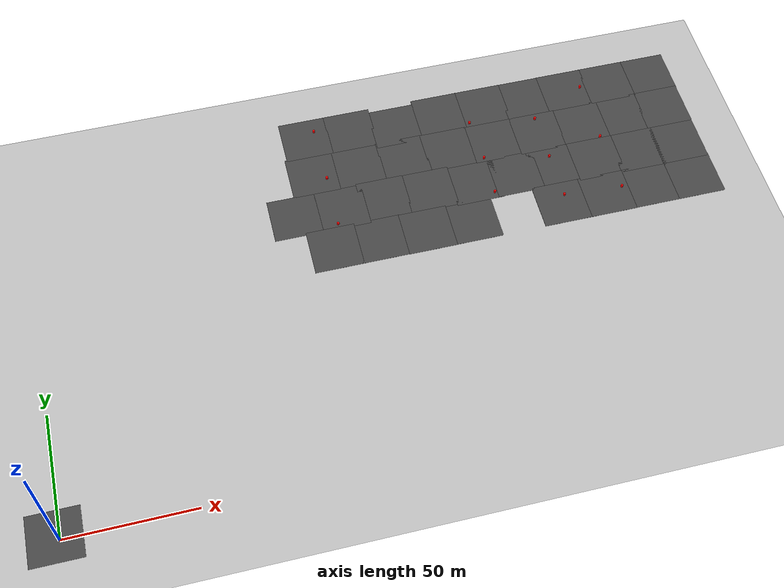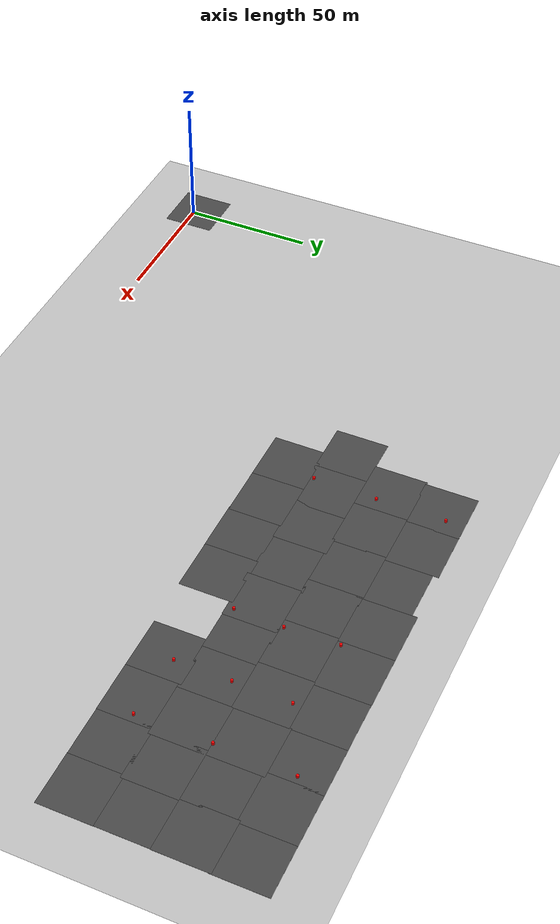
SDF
<sdf version="1.6">
 <world name="default">
  <model name="ground_plane">
   <static>1</static>
   <link name="link">
    <collision name="collision">
     <geometry><plane><normal>0 0 1</normal><size>100 100</size></plane></geometry>
     <surface>
      <contact><collide_bitmask>65535</collide_bitmask></contact>
      <friction><ode><mu>100</mu><mu2>50</mu2></ode></friction>
     </surface>
    </collision>
    <visual name="visual">
     <cast_shadows>0</cast_shadows>
     <geometry><plane><normal>0 0 1</normal><size>100 100</size></plane></geometry>
     <material>
      <script><uri>file://media/materials/scripts/gazebo.material</uri><name>Gazebo/Grey</name></script>
     </material>
    </visual>
   </link>
  </model>
  <model name="asphalt_plane">
   <static>1</static>
   <link name="link">
    <collision name="collision"><geometry><box><size>20 20 0.1</size></box></geometry></collision>
    <visual name="visual">
     <cast_shadows>0</cast_shadows>
     <geometry><box><size>20 20 0.1</size></box></geometry>
     <material>
      <script>
       <uri>model://asphalt_plane/materials/scripts</uri>
       <uri>model://asphalt_plane/materials/textures</uri>
       <name>vrc/asphalt</name>
      </script>
     </material>
    </visual>
   </link>
   <pose>-1.68563 1.69754 0 0 -0 0</pose>
  </model>
  <model name="asphalt_plane_125">
   <static>1</static>
   <link name="link">
    <collision name="collision"><geometry><box><size>20 20 0.1</size></box></geometry></collision>
    <visual name="visual">
     <cast_shadows>0</cast_shadows>
     <geometry><box><size>20 20 0.1</size></box></geometry>
     <material>
      <script>
       <uri>model://asphalt_plane/materials/scripts</uri>
       <uri>model://asphalt_plane/materials/textures</uri>
       <name>vrc/asphalt</name>
      </script>
     </material>
    </visual>
   </link>
   <pose>273.432 98.3365 0 0 -0 0</pose>
  </model>
  <model name="asphalt_plane_126">
   <static>1</static>
   <link name="link">
    <collision name="collision"><geometry><box><size>20 20 0.1</size></box></geometry></collision>
    <visual name="visual">
     <cast_shadows>0</cast_shadows>
     <geometry><box><size>20 20 0.1</size></box></geometry>
     <material>
      <script>
       <uri>model://asphalt_plane/materials/scripts</uri>
       <uri>model://asphalt_plane/materials/textures</uri>
       <name>vrc/asphalt</name>
      </script>
     </material>
    </visual>
   </link>
   <pose>253.855 98.361 0 0 -0 0</pose>
  </model>
  <model name="asphalt_plane_127">
   <static>1</static>
   <link name="link">
    <collision name="collision"><geometry><box><size>20 20 0.1</size></box></geometry></collision>
    <visual name="visual">
     <cast_shadows>0</cast_shadows>
     <geometry><box><size>20 20 0.1</size></box></geometry>
     <material>
      <script>
       <uri>model://asphalt_plane/materials/scripts</uri>
       <uri>model://asphalt_plane/materials/textures</uri>
       <name>vrc/asphalt</name>
      </script>
     </material>
    </visual>
   </link>
   <pose>234.896 98.2494 0 0 -0 0</pose>
  </model>
  <model name="asphalt_plane_128">
   <static>1</static>
   <link name="link">
    <collision name="collision"><geometry><box><size>20 20 0.1</size></box></geometry></collision>
    <visual name="visual">
     <cast_shadows>0</cast_shadows>
     <geometry><box><size>20 20 0.1</size></box></geometry>
     <material>
      <script>
       <uri>model://asphalt_plane/materials/scripts</uri>
       <uri>model://asphalt_plane/materials/textures</uri>
       <name>vrc/asphalt</name>
      </script>
     </material>
    </visual>
   </link>
   <pose>215.418 98.2608 0 0 -0 0</pose>
  </model>
  <model name="asphalt_plane_130">
   <static>1</static>
   <link name="link">
    <collision name="collision"><geometry><box><size>20 20 0.1</size></box></geometry></collision>
    <visual name="visual">
     <cast_shadows>0</cast_shadows>
     <geometry><box><size>20 20 0.1</size></box></geometry>
     <material>
      <script>
       <uri>model://asphalt_plane/materials/scripts</uri>
       <uri>model://asphalt_plane/materials/textures</uri>
       <name>vrc/asphalt</name>
      </script>
     </material>
    </visual>
   </link>
   <pose>177.534 98.1666 0 0 -0 0</pose>
  </model>
  <model name="asphalt_plane_131">
   <static>1</static>
   <link name="link">
    <collision name="collision"><geometry><box><size>20 20 0.1</size></box></geometry></collision>
    <visual name="visual">
     <cast_shadows>0</cast_shadows>
     <geometry><box><size>20 20 0.1</size></box></geometry>
     <material>
      <script>
       <uri>model://asphalt_plane/materials/scripts</uri>
       <uri>model://asphalt_plane/materials/textures</uri>
       <name>vrc/asphalt</name>
      </script>
     </material>
    </visual>
   </link>
   <pose>158.269 98.1058 0 0 -0 0</pose>
  </model>
  <model name="asphalt_plane_132">
   <static>1</static>
   <link name="link">
    <collision name="collision"><geometry><box><size>20 20 0.1</size></box></geometry></collision>
    <visual name="visual">
     <cast_shadows>0</cast_shadows>
     <geometry><box><size>20 20 0.1</size></box></geometry>
     <material>
      <script>
       <uri>model://asphalt_plane/materials/scripts</uri>
       <uri>model://asphalt_plane/materials/textures</uri>
       <name>vrc/asphalt</name>
      </script>
     </material>
    </visual>
   </link>
   <pose>139.187 98.2378 0 0 -0 0</pose>
  </model>
  <model name="asphalt_plane_133">
   <static>1</static>
   <link name="link">
    <collision name="collision"><geometry><box><size>20 20 0.1</size></box></geometry></collision>
    <visual name="visual">
     <cast_shadows>0</cast_shadows>
     <geometry><box><size>20 20 0.1</size></box></geometry>
     <material>
      <script>
       <uri>model://asphalt_plane/materials/scripts</uri>
       <uri>model://asphalt_plane/materials/textures</uri>
       <name>vrc/asphalt</name>
      </script>
     </material>
    </visual>
   </link>
   <pose>119.649 98.22 0 0 -0 0</pose>
  </model>
  <model name="asphalt_plane_146">
   <static>1</static>
   <link name="link">
    <collision name="collision"><geometry><box><size>20 20 0.1</size></box></geometry></collision>
    <visual name="visual">
     <cast_shadows>0</cast_shadows>
     <geometry><box><size>20 20 0.1</size></box></geometry>
     <material>
      <script>
       <uri>model://asphalt_plane/materials/scripts</uri>
       <uri>model://asphalt_plane/materials/textures</uri>
       <name>vrc/asphalt</name>
      </script>
     </material>
    </visual>
   </link>
   <pose>273.363 117.427 0 0 -0 0</pose>
  </model>
  <model name="asphalt_plane_147">
   <static>1</static>
   <link name="link">
    <collision name="collision"><geometry><box><size>20 20 0.1</size></box></geometry></collision>
    <visual name="visual">
     <cast_shadows>0</cast_shadows>
     <geometry><box><size>20 20 0.1</size></box></geometry>
     <material>
      <script>
       <uri>model://asphalt_plane/materials/scripts</uri>
       <uri>model://asphalt_plane/materials/textures</uri>
       <name>vrc/asphalt</name>
      </script>
     </material>
    </visual>
   </link>
   <pose>254.735 117.336 0 0 -0 0</pose>
  </model>
  <model name="asphalt_plane_148">
   <static>1</static>
   <link name="link">
    <collision name="collision"><geometry><box><size>20 20 0.1</size></box></geometry></collision>
    <visual name="visual">
     <cast_shadows>0</cast_shadows>
     <geometry><box><size>20 20 0.1</size></box></geometry>
     <material>
      <script>
       <uri>model://asphalt_plane/materials/scripts</uri>
       <uri>model://asphalt_plane/materials/textures</uri>
       <name>vrc/asphalt</name>
      </script>
     </material>
    </visual>
   </link>
   <pose>236.616 117.338 0 0 -0 0</pose>
  </model>
  <model name="asphalt_plane_149">
   <static>1</static>
   <link name="link">
    <collision name="collision"><geometry><box><size>20 20 0.1</size></box></geometry></collision>
    <visual name="visual">
     <cast_shadows>0</cast_shadows>
     <geometry><box><size>20 20 0.1</size></box></geometry>
     <material>
      <script>
       <uri>model://asphalt_plane/materials/scripts</uri>
       <uri>model://asphalt_plane/materials/textures</uri>
       <name>vrc/asphalt</name>
      </script>
     </material>
    </visual>
   </link>
   <pose>218.32 117.286 0 0 -0 0</pose>
  </model>
  <model name="asphalt_plane_150">
   <static>1</static>
   <link name="link">
    <collision name="collision"><geometry><box><size>20 20 0.1</size></box></geometry></collision>
    <visual name="visual">
     <cast_shadows>0</cast_shadows>
     <geometry><box><size>20 20 0.1</size></box></geometry>
     <material>
      <script>
       <uri>model://asphalt_plane/materials/scripts</uri>
       <uri>model://asphalt_plane/materials/textures</uri>
       <name>vrc/asphalt</name>
      </script>
     </material>
    </visual>
   </link>
   <pose>201.171 117.193 0 0 -0 0</pose>
  </model>
  <model name="asphalt_plane_151">
   <static>1</static>
   <link name="link">
    <collision name="collision"><geometry><box><size>20 20 0.1</size></box></geometry></collision>
    <visual name="visual">
     <cast_shadows>0</cast_shadows>
     <geometry><box><size>20 20 0.1</size></box></geometry>
     <material>
      <script>
       <uri>model://asphalt_plane/materials/scripts</uri>
       <uri>model://asphalt_plane/materials/textures</uri>
       <name>vrc/asphalt</name>
      </script>
     </material>
    </visual>
   </link>
   <pose>183.422 116.96 0 0 -0 0</pose>
  </model>
  <model name="asphalt_plane_152">
   <static>1</static>
   <link name="link">
    <collision name="collision"><geometry><box><size>20 20 0.1</size></box></geometry></collision>
    <visual name="visual">
     <cast_shadows>0</cast_shadows>
     <geometry><box><size>20 20 0.1</size></box></geometry>
     <material>
      <script>
       <uri>model://asphalt_plane/materials/scripts</uri>
       <uri>model://asphalt_plane/materials/textures</uri>
       <name>vrc/asphalt</name>
      </script>
     </material>
    </visual>
   </link>
   <pose>164.155 117.559 0 0 -0 0</pose>
  </model>
  <model name="asphalt_plane_153">
   <static>1</static>
   <link name="link">
    <collision name="collision"><geometry><box><size>20 20 0.1</size></box></geometry></collision>
    <visual name="visual">
     <cast_shadows>0</cast_shadows>
     <geometry><box><size>20 20 0.1</size></box></geometry>
     <material>
      <script>
       <uri>model://asphalt_plane/materials/scripts</uri>
       <uri>model://asphalt_plane/materials/textures</uri>
       <name>vrc/asphalt</name>
      </script>
     </material>
    </visual>
   </link>
   <pose>144.71 117.724 0 0 -0 0</pose>
  </model>
  <model name="asphalt_plane_154">
   <static>1</static>
   <link name="link">
    <collision name="collision"><geometry><box><size>20 20 0.1</size></box></geometry></collision>
    <visual name="visual">
     <cast_shadows>0</cast_shadows>
     <geometry><box><size>20 20 0.1</size></box></geometry>
     <material>
      <script>
       <uri>model://asphalt_plane/materials/scripts</uri>
       <uri>model://asphalt_plane/materials/textures</uri>
       <name>vrc/asphalt</name>
      </script>
     </material>
    </visual>
   </link>
   <pose>126.768 117.081 0 0 -0 0</pose>
  </model>
  <model name="asphalt_plane_155">
   <static>1</static>
   <link name="link">
    <collision name="collision"><geometry><box><size>20 20 0.1</size></box></geometry></collision>
    <visual name="visual">
     <cast_shadows>0</cast_shadows>
     <geometry><box><size>20 20 0.1</size></box></geometry>
     <material>
      <script>
       <uri>model://asphalt_plane/materials/scripts</uri>
       <uri>model://asphalt_plane/materials/textures</uri>
       <name>vrc/asphalt</name>
      </script>
     </material>
    </visual>
   </link>
   <pose>106.951 117.12 0 0 -0 0</pose>
  </model>
  <model name="asphalt_plane_166">
   <static>1</static>
   <link name="link">
    <collision name="collision"><geometry><box><size>20 20 0.1</size></box></geometry></collision>
    <visual name="visual">
     <cast_shadows>0</cast_shadows>
     <geometry><box><size>20 20 0.1</size></box></geometry>
     <material>
      <script>
       <uri>model://asphalt_plane/materials/scripts</uri>
       <uri>model://asphalt_plane/materials/textures</uri>
       <name>vrc/asphalt</name>
      </script>
     </material>
    </visual>
   </link>
   <pose>273.502 137.32 0 0 -0 0</pose>
  </model>
  <model name="asphalt_plane_167">
   <static>1</static>
   <link name="link">
    <collision name="collision"><geometry><box><size>20 20 0.1</size></box></geometry></collision>
    <visual name="visual">
     <cast_shadows>0</cast_shadows>
     <geometry><box><size>20 20 0.1</size></box></geometry>
     <material>
      <script>
       <uri>model://asphalt_plane/materials/scripts</uri>
       <uri>model://asphalt_plane/materials/textures</uri>
       <name>vrc/asphalt</name>
      </script>
     </material>
    </visual>
   </link>
   <pose>254.235 137.305 0 0 -0 0</pose>
  </model>
  <model name="asphalt_plane_168">
   <static>1</static>
   <link name="link">
    <collision name="collision"><geometry><box><size>20 20 0.1</size></box></geometry></collision>
    <visual name="visual">
     <cast_shadows>0</cast_shadows>
     <geometry><box><size>20 20 0.1</size></box></geometry>
     <material>
      <script>
       <uri>model://asphalt_plane/materials/scripts</uri>
       <uri>model://asphalt_plane/materials/textures</uri>
       <name>vrc/asphalt</name>
      </script>
     </material>
    </visual>
   </link>
   <pose>236.466 137.265 0 0 -0 0</pose>
  </model>
  <model name="asphalt_plane_169">
   <static>1</static>
   <link name="link">
    <collision name="collision"><geometry><box><size>20 20 0.1</size></box></geometry></collision>
    <visual name="visual">
     <cast_shadows>0</cast_shadows>
     <geometry><box><size>20 20 0.1</size></box></geometry>
     <material>
      <script>
       <uri>model://asphalt_plane/materials/scripts</uri>
       <uri>model://asphalt_plane/materials/textures</uri>
       <name>vrc/asphalt</name>
      </script>
     </material>
    </visual>
   </link>
   <pose>216.765 136.521 0 0 -0 0</pose>
  </model>
  <model name="asphalt_plane_170">
   <static>1</static>
   <link name="link">
    <collision name="collision"><geometry><box><size>20 20 0.1</size></box></geometry></collision>
    <visual name="visual">
     <cast_shadows>0</cast_shadows>
     <geometry><box><size>20 20 0.1</size></box></geometry>
     <material>
      <script>
       <uri>model://asphalt_plane/materials/scripts</uri>
       <uri>model://asphalt_plane/materials/textures</uri>
       <name>vrc/asphalt</name>
      </script>
     </material>
    </visual>
   </link>
   <pose>196.964 136.508 0 0 -0 0</pose>
  </model>
  <model name="asphalt_plane_171">
   <static>1</static>
   <link name="link">
    <collision name="collision"><geometry><box><size>20 20 0.1</size></box></geometry></collision>
    <visual name="visual">
     <cast_shadows>0</cast_shadows>
     <geometry><box><size>20 20 0.1</size></box></geometry>
     <material>
      <script>
       <uri>model://asphalt_plane/materials/scripts</uri>
       <uri>model://asphalt_plane/materials/textures</uri>
       <name>vrc/asphalt</name>
      </script>
     </material>
    </visual>
   </link>
   <pose>177.075 136.714 0 0 -0 0</pose>
  </model>
  <model name="asphalt_plane_172">
   <static>1</static>
   <link name="link">
    <collision name="collision"><geometry><box><size>20 20 0.1</size></box></geometry></collision>
    <visual name="visual">
     <cast_shadows>0</cast_shadows>
     <geometry><box><size>20 20 0.1</size></box></geometry>
     <material>
      <script>
       <uri>model://asphalt_plane/materials/scripts</uri>
       <uri>model://asphalt_plane/materials/textures</uri>
       <name>vrc/asphalt</name>
      </script>
     </material>
    </visual>
   </link>
   <pose>157.634 136.875 0 0 -0 0</pose>
  </model>
  <model name="asphalt_plane_173">
   <static>1</static>
   <link name="link">
    <collision name="collision"><geometry><box><size>20 20 0.1</size></box></geometry></collision>
    <visual name="visual">
     <cast_shadows>0</cast_shadows>
     <geometry><box><size>20 20 0.1</size></box></geometry>
     <material>
      <script>
       <uri>model://asphalt_plane/materials/scripts</uri>
       <uri>model://asphalt_plane/materials/textures</uri>
       <name>vrc/asphalt</name>
      </script>
     </material>
    </visual>
   </link>
   <pose>138.068 136.89 0 0 -0 0</pose>
  </model>
  <model name="asphalt_plane_174">
   <static>1</static>
   <link name="link">
    <collision name="collision"><geometry><box><size>20 20 0.1</size></box></geometry></collision>
    <visual name="visual">
     <cast_shadows>0</cast_shadows>
     <geometry><box><size>20 20 0.1</size></box></geometry>
     <material>
      <script>
       <uri>model://asphalt_plane/materials/scripts</uri>
       <uri>model://asphalt_plane/materials/textures</uri>
       <name>vrc/asphalt</name>
      </script>
     </material>
    </visual>
   </link>
   <pose>118.375 136.888 0 0 -0 0</pose>
  </model>
  <model name="asphalt_plane_195">
   <static>1</static>
   <link name="link">
    <collision name="collision"><geometry><box><size>20 20 0.1</size></box></geometry></collision>
    <visual name="visual">
     <cast_shadows>0</cast_shadows>
     <geometry><box><size>20 20 0.1</size></box></geometry>
     <material>
      <script>
       <uri>model://asphalt_plane/materials/scripts</uri>
       <uri>model://asphalt_plane/materials/textures</uri>
       <name>vrc/asphalt</name>
      </script>
     </material>
    </visual>
   </link>
   <pose>119.317 156.329 0 0 -0 0</pose>
  </model>
  <model name="asphalt_plane_196">
   <static>1</static>
   <link name="link">
    <collision name="collision"><geometry><box><size>20 20 0.1</size></box></geometry></collision>
    <visual name="visual">
     <cast_shadows>0</cast_shadows>
     <geometry><box><size>20 20 0.1</size></box></geometry>
     <material>
      <script>
       <uri>model://asphalt_plane/materials/scripts</uri>
       <uri>model://asphalt_plane/materials/textures</uri>
       <name>vrc/asphalt</name>
      </script>
     </material>
    </visual>
   </link>
   <pose>138.953 156.348 0 0 -0 0</pose>
  </model>
  <model name="asphalt_plane_197">
   <static>1</static>
   <link name="link">
    <collision name="collision"><geometry><box><size>20 20 0.1</size></box></geometry></collision>
    <visual name="visual">
     <cast_shadows>0</cast_shadows>
     <geometry><box><size>20 20 0.1</size></box></geometry>
     <material>
      <script>
       <uri>model://asphalt_plane/materials/scripts</uri>
       <uri>model://asphalt_plane/materials/textures</uri>
       <name>vrc/asphalt</name>
      </script>
     </material>
    </visual>
   </link>
   <pose>158.133 154.395 0 0 -0 0</pose>
  </model>
  <model name="asphalt_plane_198">
   <static>1</static>
   <link name="link">
    <collision name="collision"><geometry><box><size>20 20 0.1</size></box></geometry></collision>
    <visual name="visual">
     <cast_shadows>0</cast_shadows>
     <geometry><box><size>20 20 0.1</size></box></geometry>
     <material>
      <script>
       <uri>model://asphalt_plane/materials/scripts</uri>
       <uri>model://asphalt_plane/materials/textures</uri>
       <name>vrc/asphalt</name>
      </script>
     </material>
    </visual>
   </link>
   <pose>178.035 156.314 0 0 -0 0</pose>
  </model>
  <model name="asphalt_plane_199">
   <static>1</static>
   <link name="link">
    <collision name="collision"><geometry><box><size>20 20 0.1</size></box></geometry></collision>
    <visual name="visual">
     <cast_shadows>0</cast_shadows>
     <geometry><box><size>20 20 0.1</size></box></geometry>
     <material>
      <script>
       <uri>model://asphalt_plane/materials/scripts</uri>
       <uri>model://asphalt_plane/materials/textures</uri>
       <name>vrc/asphalt</name>
      </script>
     </material>
    </visual>
   </link>
   <pose>197.861 156.339 0 0 -0 0</pose>
  </model>
  <model name="asphalt_plane_200">
   <static>1</static>
   <link name="link">
    <collision name="collision"><geometry><box><size>20 20 0.1</size></box></geometry></collision>
    <visual name="visual">
     <cast_shadows>0</cast_shadows>
     <geometry><box><size>20 20 0.1</size></box></geometry>
     <material>
      <script>
       <uri>model://asphalt_plane/materials/scripts</uri>
       <uri>model://asphalt_plane/materials/textures</uri>
       <name>vrc/asphalt</name>
      </script>
     </material>
    </visual>
   </link>
   <pose>216.848 156.277 0 0 -0 0</pose>
  </model>
  <model name="asphalt_plane_201">
   <static>1</static>
   <link name="link">
    <collision name="collision"><geometry><box><size>20 20 0.1</size></box></geometry></collision>
    <visual name="visual">
     <cast_shadows>0</cast_shadows>
     <geometry><box><size>20 20 0.1</size></box></geometry>
     <material>
      <script>
       <uri>model://asphalt_plane/materials/scripts</uri>
       <uri>model://asphalt_plane/materials/textures</uri>
       <name>vrc/asphalt</name>
      </script>
     </material>
    </visual>
   </link>
   <pose>235.188 156.348 0 0 -0 0</pose>
  </model>
  <model name="asphalt_plane_202">
   <static>1</static>
   <link name="link">
    <collision name="collision"><geometry><box><size>20 20 0.1</size></box></geometry></collision>
    <visual name="visual">
     <cast_shadows>0</cast_shadows>
     <geometry><box><size>20 20 0.1</size></box></geometry>
     <material>
      <script>
       <uri>model://asphalt_plane/materials/scripts</uri>
       <uri>model://asphalt_plane/materials/textures</uri>
       <name>vrc/asphalt</name>
      </script>
     </material>
    </visual>
   </link>
   <pose>254.526 156.38 0 0 -0 0</pose>
  </model>
  <model name="asphalt_plane_203">
   <static>1</static>
   <link name="link">
    <collision name="collision"><geometry><box><size>20 20 0.1</size></box></geometry></collision>
    <visual name="visual">
     <cast_shadows>0</cast_shadows>
     <geometry><box><size>20 20 0.1</size></box></geometry>
     <material>
      <script>
       <uri>model://asphalt_plane/materials/scripts</uri>
       <uri>model://asphalt_plane/materials/textures</uri>
       <name>vrc/asphalt</name>
      </script>
     </material>
    </visual>
   </link>
   <pose>273.633 156.355 0 0 -0 0</pose>
  </model>
  <model name="station_4">
   <link name="link">
    <inertial>
     <mass>1</mass>
     <inertia><ixx>0.145833</ixx><ixy>0</ixy><ixz>0</ixz><iyy>0.145833</iyy><iyz>0</iyz><izz>0.125</izz></inertia>
    </inertial>
    <visual name="visual">
     <geometry><cylinder><radius>0.5</radius><length>1</length></cylinder></geometry>
     <material>
      <script><name>Gazebo/Grey</name><uri>file://media/materials/scripts/gazebo.material</uri></script>
      <shader type="vertex"><normal_map>__default__</normal_map></shader>
      <ambient>1 0 0 0</ambient>
      <diffuse>0 0 0 1</diffuse>
      <specular>0.91 0.01 0.01 1</specular>
      <emissive>0 0 0 1</emissive>
     </material>
    </visual>
    <collision name="collision">
     <geometry><cylinder><radius>0.5</radius><length>1</length></cylinder></geometry>
     <surface>
      <friction>
       <ode><mu>1</mu><mu2>1</mu2><fdir1>0 0 0</fdir1><slip1>0</slip1><slip2>0</slip2></ode>
       <torsional>
        <coefficient>1</coefficient>
        <patch_radius>0</patch_radius>
        <surface_radius>0</surface_radius>
        <use_patch_radius>1</use_patch_radius>
        <ode><slip>0</slip></ode>
       </torsional>
      </friction>
      <bounce><restitution_coefficient>0</restitution_coefficient><threshold>1e+06</threshold></bounce>
      <contact>
       <collide_without_contact>0</collide_without_contact>
       <collide_without_contact_bitmask>1</collide_without_contact_bitmask>
       <collide_bitmask>1</collide_bitmask>
       <ode>
        <soft_cfm>0</soft_cfm>
        <soft_erp>0.2</soft_erp>
        <kp>1e+13</kp>
        <kd>1</kd>
        <max_vel>0.01</max_vel>
        <min_depth>0</min_depth>
       </ode>
       <bullet>
        <split_impulse>1</split_impulse>
        <split_impulse_penetration_threshold>-0.01</split_impulse_penetration_threshold>
        <soft_cfm>0</soft_cfm>
        <soft_erp>0.2</soft_erp>
        <kp>1e+13</kp>
        <kd>1</kd>
       </bullet>
      </contact>
     </surface>
    </collision>
   </link>
   <static>1</static>
   <pose>242.295 156.263 0.619557 0 -0 0</pose>
  </model>
  <model name="station_5">
   <link name="link">
    <inertial>
     <mass>1</mass>
     <inertia><ixx>0.145833</ixx><ixy>0</ixy><ixz>0</ixz><iyy>0.145833</iyy><iyz>0</iyz><izz>0.125</izz></inertia>
    </inertial>
    <visual name="visual">
     <geometry><cylinder><radius>0.5</radius><length>1</length></cylinder></geometry>
     <material>
      <script><name>Gazebo/Grey</name><uri>file://media/materials/scripts/gazebo.material</uri></script>
      <shader type="vertex"><normal_map>__default__</normal_map></shader>
      <ambient>1 0 0 0</ambient>
      <diffuse>0 0 0 1</diffuse>
      <specular>0.91 0.01 0.01 1</specular>
      <emissive>0 0 0 1</emissive>
     </material>
    </visual>
    <collision name="collision">
     <geometry><cylinder><radius>0.5</radius><length>1</length></cylinder></geometry>
     <surface>
      <friction>
       <ode><mu>1</mu><mu2>1</mu2><fdir1>0 0 0</fdir1><slip1>0</slip1><slip2>0</slip2></ode>
       <torsional>
        <coefficient>1</coefficient>
        <patch_radius>0</patch_radius>
        <surface_radius>0</surface_radius>
        <use_patch_radius>1</use_patch_radius>
        <ode><slip>0</slip></ode>
       </torsional>
      </friction>
      <bounce><restitution_coefficient>0</restitution_coefficient><threshold>1e+06</threshold></bounce>
      <contact>
       <collide_without_contact>0</collide_without_contact>
       <collide_without_contact_bitmask>1</collide_without_contact_bitmask>
       <collide_bitmask>1</collide_bitmask>
       <ode>
        <soft_cfm>0</soft_cfm>
        <soft_erp>0.2</soft_erp>
        <kp>1e+13</kp>
        <kd>1</kd>
        <max_vel>0.01</max_vel>
        <min_depth>0</min_depth>
       </ode>
       <bullet>
        <split_impulse>1</split_impulse>
        <split_impulse_penetration_threshold>-0.01</split_impulse_penetration_threshold>
        <soft_cfm>0</soft_cfm>
        <soft_erp>0.2</soft_erp>
        <kp>1e+13</kp>
        <kd>1</kd>
       </bullet>
      </contact>
     </surface>
    </collision>
   </link>
   <static>1</static>
   <pose>241.963 127.602 0.619557 0 -0 0</pose>
  </model>
  <model name="station_6">
   <link name="link">
    <inertial>
     <mass>1</mass>
     <inertia><ixx>0.145833</ixx><ixy>0</ixy><ixz>0</ixz><iyy>0.145833</iyy><iyz>0</iyz><izz>0.125</izz></inertia>
    </inertial>
    <visual name="visual">
     <geometry><cylinder><radius>0.5</radius><length>1</length></cylinder></geometry>
     <material>
      <script><name>Gazebo/Grey</name><uri>file://media/materials/scripts/gazebo.material</uri></script>
      <shader type="vertex"><normal_map>__default__</normal_map></shader>
      <ambient>1 0 0 0</ambient>
      <diffuse>0 0 0 1</diffuse>
      <specular>0.91 0.01 0.01 1</specular>
      <emissive>0 0 0 1</emissive>
     </material>
    </visual>
    <collision name="collision">
     <geometry><cylinder><radius>0.5</radius><length>1</length></cylinder></geometry>
     <surface>
      <friction>
       <ode><mu>1</mu><mu2>1</mu2><fdir1>0 0 0</fdir1><slip1>0</slip1><slip2>0</slip2></ode>
       <torsional>
        <coefficient>1</coefficient>
        <patch_radius>0</patch_radius>
        <surface_radius>0</surface_radius>
        <use_patch_radius>1</use_patch_radius>
        <ode><slip>0</slip></ode>
       </torsional>
      </friction>
      <bounce><restitution_coefficient>0</restitution_coefficient><threshold>1e+06</threshold></bounce>
      <contact>
       <collide_without_contact>0</collide_without_contact>
       <collide_without_contact_bitmask>1</collide_without_contact_bitmask>
       <collide_bitmask>1</collide_bitmask>
       <ode>
        <soft_cfm>0</soft_cfm>
        <soft_erp>0.2</soft_erp>
        <kp>1e+13</kp>
        <kd>1</kd>
        <max_vel>0.01</max_vel>
        <min_depth>0</min_depth>
       </ode>
       <bullet>
        <split_impulse>1</split_impulse>
        <split_impulse_penetration_threshold>-0.01</split_impulse_penetration_threshold>
        <soft_cfm>0</soft_cfm>
        <soft_erp>0.2</soft_erp>
        <kp>1e+13</kp>
        <kd>1</kd>
       </bullet>
      </contact>
     </surface>
    </collision>
   </link>
   <static>1</static>
   <pose>242.228 100.081 0.619557 0 -0 0</pose>
  </model>
  <model name="station_19">
   <link name="link">
    <inertial>
     <mass>1</mass>
     <inertia><ixx>0.145833</ixx><ixy>0</ixy><ixz>0</ixz><iyy>0.145833</iyy><iyz>0</iyz><izz>0.125</izz></inertia>
    </inertial>
    <visual name="visual">
     <geometry><cylinder><radius>0.5</radius><length>1</length></cylinder></geometry>
     <material>
      <script><name>Gazebo/Grey</name><uri>file://media/materials/scripts/gazebo.material</uri></script>
      <shader type="vertex"><normal_map>__default__</normal_map></shader>
      <ambient>1 0 0 0</ambient>
      <diffuse>0 0 0 1</diffuse>
      <specular>0.91 0.01 0.01 1</specular>
      <emissive>0 0 0 1</emissive>
     </material>
    </visual>
    <collision name="collision">
     <geometry><cylinder><radius>0.5</radius><length>1</length></cylinder></geometry>
     <surface>
      <friction>
       <ode><mu>1</mu><mu2>1</mu2><fdir1>0 0 0</fdir1><slip1>0</slip1><slip2>0</slip2></ode>
       <torsional>
        <coefficient>1</coefficient>
        <patch_radius>0</patch_radius>
        <surface_radius>0</surface_radius>
        <use_patch_radius>1</use_patch_radius>
        <ode><slip>0</slip></ode>
       </torsional>
      </friction>
      <bounce><restitution_coefficient>0</restitution_coefficient><threshold>1e+06</threshold></bounce>
      <contact>
       <collide_without_contact>0</collide_without_contact>
       <collide_without_contact_bitmask>1</collide_without_contact_bitmask>
       <collide_bitmask>1</collide_bitmask>
       <ode>
        <soft_cfm>0</soft_cfm>
        <soft_erp>0.2</soft_erp>
        <kp>1e+13</kp>
        <kd>1</kd>
        <max_vel>0.01</max_vel>
        <min_depth>0</min_depth>
       </ode>
       <bullet>
        <split_impulse>1</split_impulse>
        <split_impulse_penetration_threshold>-0.01</split_impulse_penetration_threshold>
        <soft_cfm>0</soft_cfm>
        <soft_erp>0.2</soft_erp>
        <kp>1e+13</kp>
        <kd>1</kd>
       </bullet>
      </contact>
     </surface>
    </collision>
   </link>
   <static>1</static>
   <pose>217.656 101.652 0.619557 0 -0 0</pose>
  </model>
  <model name="station_20">
   <link name="link">
    <inertial>
     <mass>1</mass>
     <inertia><ixx>0.145833</ixx><ixy>0</ixy><ixz>0</ixz><iyy>0.145833</iyy><iyz>0</iyz><izz>0.125</izz></inertia>
    </inertial>
    <visual name="visual">
     <geometry><cylinder><radius>0.5</radius><length>1</length></cylinder></geometry>
     <material>
      <script><name>Gazebo/Grey</name><uri>file://media/materials/scripts/gazebo.material</uri></script>
      <shader type="vertex"><normal_map>__default__</normal_map></shader>
      <ambient>1 0 0 0</ambient>
      <diffuse>0 0 0 1</diffuse>
      <specular>0.91 0.01 0.01 1</specular>
      <emissive>0 0 0 1</emissive>
     </material>
    </visual>
    <collision name="collision">
     <geometry><cylinder><radius>0.5</radius><length>1</length></cylinder></geometry>
     <surface>
      <friction>
       <ode><mu>1</mu><mu2>1</mu2><fdir1>0 0 0</fdir1><slip1>0</slip1><slip2>0</slip2></ode>
       <torsional>
        <coefficient>1</coefficient>
        <patch_radius>0</patch_radius>
        <surface_radius>0</surface_radius>
        <use_patch_radius>1</use_patch_radius>
        <ode><slip>0</slip></ode>
       </torsional>
      </friction>
      <bounce><restitution_coefficient>0</restitution_coefficient><threshold>1e+06</threshold></bounce>
      <contact>
       <collide_without_contact>0</collide_without_contact>
       <collide_without_contact_bitmask>1</collide_without_contact_bitmask>
       <collide_bitmask>1</collide_bitmask>
       <ode>
        <soft_cfm>0</soft_cfm>
        <soft_erp>0.2</soft_erp>
        <kp>1e+13</kp>
        <kd>1</kd>
        <max_vel>0.01</max_vel>
        <min_depth>0</min_depth>
       </ode>
       <bullet>
        <split_impulse>1</split_impulse>
        <split_impulse_penetration_threshold>-0.01</split_impulse_penetration_threshold>
        <soft_cfm>0</soft_cfm>
        <soft_erp>0.2</soft_erp>
        <kp>1e+13</kp>
        <kd>1</kd>
       </bullet>
      </contact>
     </surface>
    </collision>
   </link>
   <static>1</static>
   <pose>217.658 122.404 0.619557 0 -0 0</pose>
  </model>
  <model name="station_21">
   <link name="link">
    <inertial>
     <mass>1</mass>
     <inertia><ixx>0.145833</ixx><ixy>0</ixy><ixz>0</ixz><iyy>0.145833</iyy><iyz>0</iyz><izz>0.125</izz></inertia>
    </inertial>
    <visual name="visual">
     <geometry><cylinder><radius>0.5</radius><length>1</length></cylinder></geometry>
     <material>
      <script><name>Gazebo/Grey</name><uri>file://media/materials/scripts/gazebo.material</uri></script>
      <shader type="vertex"><normal_map>__default__</normal_map></shader>
      <ambient>1 0 0 0</ambient>
      <diffuse>0 0 0 1</diffuse>
      <specular>0.91 0.01 0.01 1</specular>
      <emissive>0 0 0 1</emissive>
     </material>
    </visual>
    <collision name="collision">
     <geometry><cylinder><radius>0.5</radius><length>1</length></cylinder></geometry>
     <surface>
      <friction>
       <ode><mu>1</mu><mu2>1</mu2><fdir1>0 0 0</fdir1><slip1>0</slip1><slip2>0</slip2></ode>
       <torsional>
        <coefficient>1</coefficient>
        <patch_radius>0</patch_radius>
        <surface_radius>0</surface_radius>
        <use_patch_radius>1</use_patch_radius>
        <ode><slip>0</slip></ode>
       </torsional>
      </friction>
      <bounce><restitution_coefficient>0</restitution_coefficient><threshold>1e+06</threshold></bounce>
      <contact>
       <collide_without_contact>0</collide_without_contact>
       <collide_without_contact_bitmask>1</collide_without_contact_bitmask>
       <collide_bitmask>1</collide_bitmask>
       <ode>
        <soft_cfm>0</soft_cfm>
        <soft_erp>0.2</soft_erp>
        <kp>1e+13</kp>
        <kd>1</kd>
        <max_vel>0.01</max_vel>
        <min_depth>0</min_depth>
       </ode>
       <bullet>
        <split_impulse>1</split_impulse>
        <split_impulse_penetration_threshold>-0.01</split_impulse_penetration_threshold>
        <soft_cfm>0</soft_cfm>
        <soft_erp>0.2</soft_erp>
        <kp>1e+13</kp>
        <kd>1</kd>
       </bullet>
      </contact>
     </surface>
    </collision>
   </link>
   <static>1</static>
   <pose>217.729 143.639 0.619557 0 -0 0</pose>
  </model>
  <model name="station_35">
   <link name="link">
    <inertial>
     <mass>1</mass>
     <inertia><ixx>0.145833</ixx><ixy>0</ixy><ixz>0</ixz><iyy>0.145833</iyy><iyz>0</iyz><izz>0.125</izz></inertia>
    </inertial>
    <visual name="visual">
     <geometry><cylinder><radius>0.5</radius><length>1</length></cylinder></geometry>
     <material>
      <script><name>Gazebo/Grey</name><uri>file://media/materials/scripts/gazebo.material</uri></script>
      <shader type="vertex"><normal_map>__default__</normal_map></shader>
      <ambient>1 0 0 0</ambient>
      <diffuse>0 0 0 1</diffuse>
      <specular>0.91 0.01 0.01 1</specular>
      <emissive>0 0 0 1</emissive>
     </material>
    </visual>
    <collision name="collision">
     <geometry><cylinder><radius>0.5</radius><length>1</length></cylinder></geometry>
     <surface>
      <friction>
       <ode><mu>1</mu><mu2>1</mu2><fdir1>0 0 0</fdir1><slip1>0</slip1><slip2>0</slip2></ode>
       <torsional>
        <coefficient>1</coefficient>
        <patch_radius>0</patch_radius>
        <surface_radius>0</surface_radius>
        <use_patch_radius>1</use_patch_radius>
        <ode><slip>0</slip></ode>
       </torsional>
      </friction>
      <bounce><restitution_coefficient>0</restitution_coefficient><threshold>1e+06</threshold></bounce>
      <contact>
       <collide_without_contact>0</collide_without_contact>
       <collide_without_contact_bitmask>1</collide_without_contact_bitmask>
       <collide_bitmask>1</collide_bitmask>
       <ode>
        <soft_cfm>0</soft_cfm>
        <soft_erp>0.2</soft_erp>
        <kp>1e+13</kp>
        <kd>1</kd>
        <max_vel>0.01</max_vel>
        <min_depth>0</min_depth>
       </ode>
       <bullet>
        <split_impulse>1</split_impulse>
        <split_impulse_penetration_threshold>-0.01</split_impulse_penetration_threshold>
        <soft_cfm>0</soft_cfm>
        <soft_erp>0.2</soft_erp>
        <kp>1e+13</kp>
        <kd>1</kd>
       </bullet>
      </contact>
     </surface>
    </collision>
   </link>
   <static>1</static>
   <pose>189.718 148.093 0.619557 0 -0 0</pose>
  </model>
  <model name="station_36">
   <link name="link">
    <inertial>
     <mass>1</mass>
     <inertia><ixx>0.145833</ixx><ixy>0</ixy><ixz>0</ixz><iyy>0.145833</iyy><iyz>0</iyz><izz>0.125</izz></inertia>
    </inertial>
    <visual name="visual">
     <geometry><cylinder><radius>0.5</radius><length>1</length></cylinder></geometry>
     <material>
      <script><name>Gazebo/Grey</name><uri>file://media/materials/scripts/gazebo.material</uri></script>
      <shader type="vertex"><normal_map>__default__</normal_map></shader>
      <ambient>1 0 0 0</ambient>
      <diffuse>0 0 0 1</diffuse>
      <specular>0.91 0.01 0.01 1</specular>
      <emissive>0 0 0 1</emissive>
     </material>
    </visual>
    <collision name="collision">
     <geometry><cylinder><radius>0.5</radius><length>1</length></cylinder></geometry>
     <surface>
      <friction>
       <ode><mu>1</mu><mu2>1</mu2><fdir1>0 0 0</fdir1><slip1>0</slip1><slip2>0</slip2></ode>
       <torsional>
        <coefficient>1</coefficient>
        <patch_radius>0</patch_radius>
        <surface_radius>0</surface_radius>
        <use_patch_radius>1</use_patch_radius>
        <ode><slip>0</slip></ode>
       </torsional>
      </friction>
      <bounce><restitution_coefficient>0</restitution_coefficient><threshold>1e+06</threshold></bounce>
      <contact>
       <collide_without_contact>0</collide_without_contact>
       <collide_without_contact_bitmask>1</collide_without_contact_bitmask>
       <collide_bitmask>1</collide_bitmask>
       <ode>
        <soft_cfm>0</soft_cfm>
        <soft_erp>0.2</soft_erp>
        <kp>1e+13</kp>
        <kd>1</kd>
        <max_vel>0.01</max_vel>
        <min_depth>0</min_depth>
       </ode>
       <bullet>
        <split_impulse>1</split_impulse>
        <split_impulse_penetration_threshold>-0.01</split_impulse_penetration_threshold>
        <soft_cfm>0</soft_cfm>
        <soft_erp>0.2</soft_erp>
        <kp>1e+13</kp>
        <kd>1</kd>
       </bullet>
      </contact>
     </surface>
    </collision>
   </link>
   <static>1</static>
   <pose>190.546 128.176 0.619557 0 -0 0</pose>
  </model>
  <model name="station_37">
   <link name="link">
    <inertial>
     <mass>1</mass>
     <inertia><ixx>0.145833</ixx><ixy>0</ixy><ixz>0</ixz><iyy>0.145833</iyy><iyz>0</iyz><izz>0.125</izz></inertia>
    </inertial>
    <visual name="visual">
     <geometry><cylinder><radius>0.5</radius><length>1</length></cylinder></geometry>
     <material>
      <script><name>Gazebo/Grey</name><uri>file://media/materials/scripts/gazebo.material</uri></script>
      <shader type="vertex"><normal_map>__default__</normal_map></shader>
      <ambient>1 0 0 0</ambient>
      <diffuse>0 0 0 1</diffuse>
      <specular>0.91 0.01 0.01 1</specular>
      <emissive>0 0 0 1</emissive>
     </material>
    </visual>
    <collision name="collision">
     <geometry><cylinder><radius>0.5</radius><length>1</length></cylinder></geometry>
     <surface>
      <friction>
       <ode><mu>1</mu><mu2>1</mu2><fdir1>0 0 0</fdir1><slip1>0</slip1><slip2>0</slip2></ode>
       <torsional>
        <coefficient>1</coefficient>
        <patch_radius>0</patch_radius>
        <surface_radius>0</surface_radius>
        <use_patch_radius>1</use_patch_radius>
        <ode><slip>0</slip></ode>
       </torsional>
      </friction>
      <bounce><restitution_coefficient>0</restitution_coefficient><threshold>1e+06</threshold></bounce>
      <contact>
       <collide_without_contact>0</collide_without_contact>
       <collide_without_contact_bitmask>1</collide_without_contact_bitmask>
       <collide_bitmask>1</collide_bitmask>
       <ode>
        <soft_cfm>0</soft_cfm>
        <soft_erp>0.2</soft_erp>
        <kp>1e+13</kp>
        <kd>1</kd>
        <max_vel>0.01</max_vel>
        <min_depth>0</min_depth>
       </ode>
       <bullet>
        <split_impulse>1</split_impulse>
        <split_impulse_penetration_threshold>-0.01</split_impulse_penetration_threshold>
        <soft_cfm>0</soft_cfm>
        <soft_erp>0.2</soft_erp>
        <kp>1e+13</kp>
        <kd>1</kd>
       </bullet>
      </contact>
     </surface>
    </collision>
   </link>
   <static>1</static>
   <pose>190.173 109.937 0.619557 0 -0 0</pose>
  </model>
  <model name="station_52">
   <link name="link">
    <inertial>
     <mass>1</mass>
     <inertia><ixx>0.145833</ixx><ixy>0</ixy><ixz>0</ixz><iyy>0.145833</iyy><iyz>0</iyz><izz>0.125</izz></inertia>
    </inertial>
    <visual name="visual">
     <geometry><cylinder><radius>0.5</radius><length>1</length></cylinder></geometry>
     <material>
      <script><name>Gazebo/Grey</name><uri>file://media/materials/scripts/gazebo.material</uri></script>
      <shader type="vertex"><normal_map>__default__</normal_map></shader>
      <ambient>1 0 0 0</ambient>
      <diffuse>0 0 0 1</diffuse>
      <specular>0.91 0.01 0.01 1</specular>
      <emissive>0 0 0 1</emissive>
     </material>
    </visual>
    <collision name="collision">
     <geometry><cylinder><radius>0.5</radius><length>1</length></cylinder></geometry>
     <surface>
      <friction>
       <ode><mu>1</mu><mu2>1</mu2><fdir1>0 0 0</fdir1><slip1>0</slip1><slip2>0</slip2></ode>
       <torsional>
        <coefficient>1</coefficient>
        <patch_radius>0</patch_radius>
        <surface_radius>0</surface_radius>
        <use_patch_radius>1</use_patch_radius>
        <ode><slip>0</slip></ode>
       </torsional>
      </friction>
      <bounce><restitution_coefficient>0</restitution_coefficient><threshold>1e+06</threshold></bounce>
      <contact>
       <collide_without_contact>0</collide_without_contact>
       <collide_without_contact_bitmask>1</collide_without_contact_bitmask>
       <collide_bitmask>1</collide_bitmask>
       <ode>
        <soft_cfm>0</soft_cfm>
        <soft_erp>0.2</soft_erp>
        <kp>1e+13</kp>
        <kd>1</kd>
        <max_vel>0.01</max_vel>
        <min_depth>0</min_depth>
       </ode>
       <bullet>
        <split_impulse>1</split_impulse>
        <split_impulse_penetration_threshold>-0.01</split_impulse_penetration_threshold>
        <soft_cfm>0</soft_cfm>
        <soft_erp>0.2</soft_erp>
        <kp>1e+13</kp>
        <kd>1</kd>
       </bullet>
      </contact>
     </surface>
    </collision>
   </link>
   <static>1</static>
   <pose>123.617 159.382 0.619557 0 -0 0</pose>
  </model>
  <model name="station_53">
   <link name="link">
    <inertial>
     <mass>1</mass>
     <inertia><ixx>0.145833</ixx><ixy>0</ixy><ixz>0</ixz><iyy>0.145833</iyy><iyz>0</iyz><izz>0.125</izz></inertia>
    </inertial>
    <visual name="visual">
     <geometry><cylinder><radius>0.5</radius><length>1</length></cylinder></geometry>
     <material>
      <script><name>Gazebo/Grey</name><uri>file://media/materials/scripts/gazebo.material</uri></script>
      <shader type="vertex"><normal_map>__default__</normal_map></shader>
      <ambient>1 0 0 0</ambient>
      <diffuse>0 0 0 1</diffuse>
      <specular>0.91 0.01 0.01 1</specular>
      <emissive>0 0 0 1</emissive>
     </material>
    </visual>
    <collision name="collision">
     <geometry><cylinder><radius>0.5</radius><length>1</length></cylinder></geometry>
     <surface>
      <friction>
       <ode><mu>1</mu><mu2>1</mu2><fdir1>0 0 0</fdir1><slip1>0</slip1><slip2>0</slip2></ode>
       <torsional>
        <coefficient>1</coefficient>
        <patch_radius>0</patch_radius>
        <surface_radius>0</surface_radius>
        <use_patch_radius>1</use_patch_radius>
        <ode><slip>0</slip></ode>
       </torsional>
      </friction>
      <bounce><restitution_coefficient>0</restitution_coefficient><threshold>1e+06</threshold></bounce>
      <contact>
       <collide_without_contact>0</collide_without_contact>
       <collide_without_contact_bitmask>1</collide_without_contact_bitmask>
       <collide_bitmask>1</collide_bitmask>
       <ode>
        <soft_cfm>0</soft_cfm>
        <soft_erp>0.2</soft_erp>
        <kp>1e+13</kp>
        <kd>1</kd>
        <max_vel>0.01</max_vel>
        <min_depth>0</min_depth>
       </ode>
       <bullet>
        <split_impulse>1</split_impulse>
        <split_impulse_penetration_threshold>-0.01</split_impulse_penetration_threshold>
        <soft_cfm>0</soft_cfm>
        <soft_erp>0.2</soft_erp>
        <kp>1e+13</kp>
        <kd>1</kd>
       </bullet>
      </contact>
     </surface>
    </collision>
   </link>
   <static>1</static>
   <pose>123.868 133.45 0.619557 0 -0 0</pose>
  </model>
  <model name="station_54">
   <link name="link">
    <inertial>
     <mass>1</mass>
     <inertia><ixx>0.145833</ixx><ixy>0</ixy><ixz>0</ixz><iyy>0.145833</iyy><iyz>0</iyz><izz>0.125</izz></inertia>
    </inertial>
    <visual name="visual">
     <geometry><cylinder><radius>0.5</radius><length>1</length></cylinder></geometry>
     <material>
      <script><name>Gazebo/Grey</name><uri>file://media/materials/scripts/gazebo.material</uri></script>
      <shader type="vertex"><normal_map>__default__</normal_map></shader>
      <ambient>1 0 0 0</ambient>
      <diffuse>0 0 0 1</diffuse>
      <specular>0.91 0.01 0.01 1</specular>
      <emissive>0 0 0 1</emissive>
     </material>
    </visual>
    <collision name="collision">
     <geometry><cylinder><radius>0.5</radius><length>1</length></cylinder></geometry>
     <surface>
      <friction>
       <ode><mu>1</mu><mu2>1</mu2><fdir1>0 0 0</fdir1><slip1>0</slip1><slip2>0</slip2></ode>
       <torsional>
        <coefficient>1</coefficient>
        <patch_radius>0</patch_radius>
        <surface_radius>0</surface_radius>
        <use_patch_radius>1</use_patch_radius>
        <ode><slip>0</slip></ode>
       </torsional>
      </friction>
      <bounce><restitution_coefficient>0</restitution_coefficient><threshold>1e+06</threshold></bounce>
      <contact>
       <collide_without_contact>0</collide_without_contact>
       <collide_without_contact_bitmask>1</collide_without_contact_bitmask>
       <collide_bitmask>1</collide_bitmask>
       <ode>
        <soft_cfm>0</soft_cfm>
        <soft_erp>0.2</soft_erp>
        <kp>1e+13</kp>
        <kd>1</kd>
        <max_vel>0.01</max_vel>
        <min_depth>0</min_depth>
       </ode>
       <bullet>
        <split_impulse>1</split_impulse>
        <split_impulse_penetration_threshold>-0.01</split_impulse_penetration_threshold>
        <soft_cfm>0</soft_cfm>
        <soft_erp>0.2</soft_erp>
        <kp>1e+13</kp>
        <kd>1</kd>
       </bullet>
      </contact>
     </surface>
    </collision>
   </link>
   <static>1</static>
   <pose>123.493 109.477 0.619557 0 -0 0</pose>
  </model>
 </world>
</sdf>
